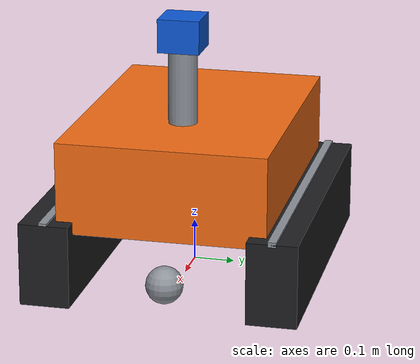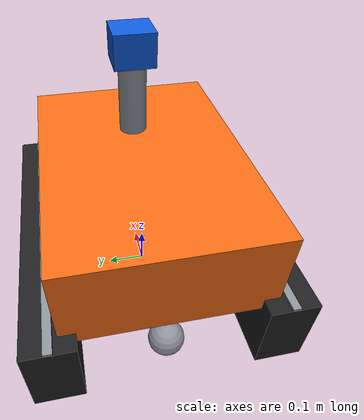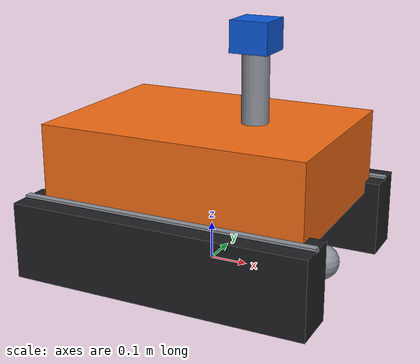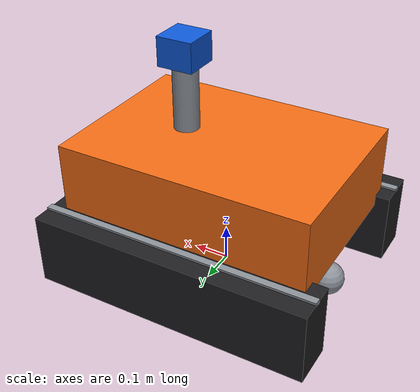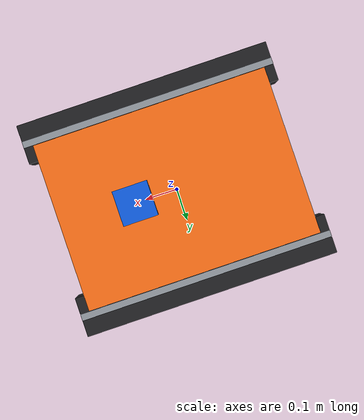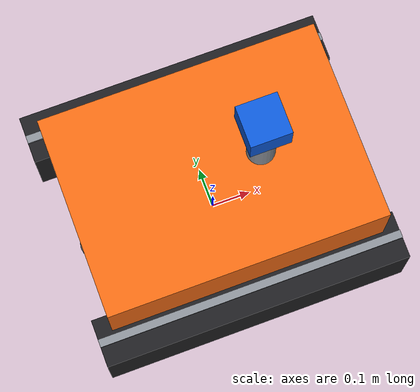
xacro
<?xml version="1.0"?>
<robot name="tracked_vehicle" xmlns:xacro="http://www.ros.org/wiki/xacro">

  <!-- ============================ 可调参数 ============================ -->
  <xacro:arg name="enable_camera" default="false"/>

  <xacro:property name="wheel_radius" value="0.08"/>
  <xacro:property name="wheel_width" value="0.06"/>
  <xacro:property name="wheel_separation" value="0.54"/>
  <xacro:property name="base_length" value="0.70"/>
  <xacro:property name="base_width" value="0.50"/>
  <xacro:property name="base_height" value="0.22"/>
  <xacro:property name="track_length" value="0.78"/>
  <xacro:property name="track_width" value="0.12"/>
  <xacro:property name="track_height" value="0.20"/>

  <!-- ============================ 材质 ============================ -->
  <material name="body_orange">
    <color rgba="0.95 0.42 0.08 1.0"/>
  </material>
  <material name="track_dark">
    <color rgba="0.12 0.12 0.13 1.0"/>
  </material>
  <material name="metal_grey">
    <color rgba="0.55 0.57 0.60 1.0"/>
  </material>
  <material name="sensor_blue">
    <color rgba="0.05 0.35 0.85 1.0"/>
  </material>

  <!-- ============================ 惯量宏 ============================ -->
  <xacro:macro name="box_inertia" params="m x y z ox oy oz">
    <inertial>
      <origin xyz="${ox} ${oy} ${oz}" rpy="0 0 0"/>
      <mass value="${m}"/>
      <inertia ixx="${m*(y*y+z*z)/12.0}" ixy="0.0" ixz="0.0"
               iyy="${m*(x*x+z*z)/12.0}" iyz="0.0"
               izz="${m*(x*x+y*y)/12.0}"/>
    </inertial>
  </xacro:macro>

  <xacro:macro name="cylinder_inertia" params="m r l ox oy oz">
    <inertial>
      <origin xyz="${ox} ${oy} ${oz}" rpy="0 0 0"/>
      <mass value="${m}"/>
      <inertia ixx="${m*(3*r*r+l*l)/12.0}" ixy="0.0" ixz="0.0"
               iyy="${m*(3*r*r+l*l)/12.0}" iyz="0.0"
               izz="${m*r*r/2.0}"/>
    </inertial>
  </xacro:macro>

  <!-- ============================ 车体 ============================ -->
  <link name="base_link">
    <xacro:box_inertia m="18.0" x="${base_length}" y="${base_width}" z="${base_height}"
                       ox="0" oy="0" oz="0.22"/>
    <visual>
      <origin xyz="0 0 0.28" rpy="0 0 0"/>
      <geometry>
        <box size="${base_length} ${base_width} ${base_height}"/>
      </geometry>
      <material name="body_orange"/>
    </visual>
    <collision>
      <origin xyz="0 0 0.28" rpy="0 0 0"/>
      <geometry>
        <box size="${base_length} ${base_width} ${base_height}"/>
      </geometry>
    </collision>
  </link>

  <!-- 车顶传感器桅杆（视觉件，不参与碰撞） -->
  <link name="sensor_mast">
    <visual>
      <origin xyz="0 0 0.10" rpy="0 0 0"/>
      <geometry>
        <cylinder radius="0.035" length="0.20"/>
      </geometry>
      <material name="metal_grey"/>
    </visual>
    <visual>
      <origin xyz="0 0 0.22" rpy="0 0 0"/>
      <geometry>
        <box size="0.10 0.10 0.08"/>
      </geometry>
      <material name="sensor_blue"/>
    </visual>
  </link>
  <joint name="sensor_mast_joint" type="fixed">
    <parent link="base_link"/>
    <child link="sensor_mast"/>
    <origin xyz="0.12 0 0.39" rpy="0 0 0"/>
  </joint>

  <!-- ============================ 履带（视觉件） ============================ -->
  <link name="left_track">
    <visual>
      <origin xyz="0 0 0.10" rpy="0 0 0"/>
      <geometry>
        <box size="${track_length} ${track_width} ${track_height}"/>
      </geometry>
      <material name="track_dark"/>
    </visual>
    <!-- 履带表面的浅色横向花纹，增强 Gazebo 画面辨识度 -->
    <visual>
      <origin xyz="0 0 0.20" rpy="0 0 0"/>
      <geometry>
        <box size="${track_length} 0.02 0.012"/>
      </geometry>
      <material name="metal_grey"/>
    </visual>
  </link>
  <joint name="left_track_joint" type="fixed">
    <parent link="base_link"/>
    <child link="left_track"/>
    <origin xyz="0 0.27 0" rpy="0 0 0"/>
  </joint>

  <link name="right_track">
    <visual>
      <origin xyz="0 0 0.10" rpy="0 0 0"/>
      <geometry>
        <box size="${track_length} ${track_width} ${track_height}"/>
      </geometry>
      <material name="track_dark"/>
    </visual>
    <visual>
      <origin xyz="0 0 0.20" rpy="0 0 0"/>
      <geometry>
        <box size="${track_length} 0.02 0.012"/>
      </geometry>
      <material name="metal_grey"/>
    </visual>
  </link>
  <joint name="right_track_joint" type="fixed">
    <parent link="base_link"/>
    <child link="right_track"/>
    <origin xyz="0 -0.27 0" rpy="0 0 0"/>
  </joint>

  <!-- ============================ 驱动轮 ============================ -->
  <link name="left_wheel">
    <xacro:cylinder_inertia m="1.2" r="${wheel_radius}" l="${wheel_width}"
                            ox="0" oy="0" oz="0"/>
    <visual>
      <origin xyz="0 0 0" rpy="1.57079632679 0 0"/>
      <geometry>
        <cylinder radius="${wheel_radius}" length="${wheel_width}"/>
      </geometry>
      <material name="metal_grey"/>
    </visual>
    <collision>
      <origin xyz="0 0 0" rpy="1.57079632679 0 0"/>
      <geometry>
        <cylinder radius="${wheel_radius}" length="${wheel_width}"/>
      </geometry>
    </collision>
  </link>
  <joint name="left_wheel_joint" type="continuous">
    <parent link="base_link"/>
    <child link="left_wheel"/>
    <origin xyz="0 0.27 ${wheel_radius}" rpy="0 0 0"/>
    <axis xyz="0 1 0"/>
    <limit effort="50.0" velocity="20.0"/>
  </joint>

  <link name="right_wheel">
    <xacro:cylinder_inertia m="1.2" r="${wheel_radius}" l="${wheel_width}"
                            ox="0" oy="0" oz="0"/>
    <visual>
      <origin xyz="0 0 0" rpy="1.57079632679 0 0"/>
      <geometry>
        <cylinder radius="${wheel_radius}" length="${wheel_width}"/>
      </geometry>
      <material name="metal_grey"/>
    </visual>
    <collision>
      <origin xyz="0 0 0" rpy="1.57079632679 0 0"/>
      <geometry>
        <cylinder radius="${wheel_radius}" length="${wheel_width}"/>
      </geometry>
    </collision>
  </link>
  <joint name="right_wheel_joint" type="continuous">
    <parent link="base_link"/>
    <child link="right_wheel"/>
    <origin xyz="0 -0.27 ${wheel_radius}" rpy="0 0 0"/>
    <axis xyz="0 1 0"/>
    <limit effort="50.0" velocity="20.0"/>
  </joint>

  <!-- ============================ 前后万向支撑轮 ============================ -->
  <link name="front_caster">
    <xacro:cylinder_inertia m="0.15" r="0.045" l="0.03" ox="0" oy="0" oz="0"/>
    <visual>
      <origin xyz="0 0 0" rpy="0 0 0"/>
      <geometry>
        <sphere radius="0.045"/>
      </geometry>
      <material name="metal_grey"/>
    </visual>
    <collision>
      <origin xyz="0 0 0" rpy="0 0 0"/>
      <geometry>
        <sphere radius="0.045"/>
      </geometry>
    </collision>
  </link>
  <joint name="front_caster_joint" type="fixed">
    <parent link="base_link"/>
    <child link="front_caster"/>
    <origin xyz="0.31 0 0.048" rpy="0 0 0"/>
  </joint>

  <link name="rear_caster">
    <xacro:cylinder_inertia m="0.15" r="0.045" l="0.03" ox="0" oy="0" oz="0"/>
    <visual>
      <origin xyz="0 0 0" rpy="0 0 0"/>
      <geometry>
        <sphere radius="0.045"/>
      </geometry>
      <material name="metal_grey"/>
    </visual>
    <collision>
      <origin xyz="0 0 0" rpy="0 0 0"/>
      <geometry>
        <sphere radius="0.045"/>
      </geometry>
    </collision>
  </link>
  <joint name="rear_caster_joint" type="fixed">
    <parent link="base_link"/>
    <child link="rear_caster"/>
    <origin xyz="-0.31 0 0.048" rpy="0 0 0"/>
  </joint>

  <!-- ============================ Gazebo 摩擦参数 ============================ -->
  <gazebo reference="left_wheel">
    <mu1>1.4</mu1>
    <mu2>1.4</mu2>
    <kp>1000000.0</kp>
    <kd>100.0</kd>
  </gazebo>
  <gazebo reference="right_wheel">
    <mu1>1.4</mu1>
    <mu2>1.4</mu2>
    <kp>1000000.0</kp>
    <kd>100.0</kd>
  </gazebo>
  <gazebo reference="front_caster">
    <mu1>0.01</mu1>
    <mu2>0.01</mu2>
  </gazebo>
  <gazebo reference="rear_caster">
    <mu1>0.01</mu1>
    <mu2>0.01</mu2>
  </gazebo>
  <gazebo reference="base_link">
    <mu1>0.6</mu1>
    <mu2>0.6</mu2>
    <selfCollide>false</selfCollide>
  </gazebo>

  <!-- ============================ 差速驱动插件 ============================ -->
  <gazebo>
    <plugin name="diff_drive" filename="libgazebo_ros_diff_drive.so">
      <updateRate>50.0</updateRate>
      <leftJoint>left_wheel_joint</leftJoint>
      <rightJoint>right_wheel_joint</rightJoint>
      <wheelSeparation>${wheel_separation}</wheelSeparation>
      <wheelDiameter>${wheel_radius * 2.0}</wheelDiameter>
      <wheelTorque>40.0</wheelTorque>
      <wheelAcceleration>0.0</wheelAcceleration>
      <commandTopic>cmd_vel</commandTopic>
      <odometryTopic>odom</odometryTopic>
      <odometryFrame>odom</odometryFrame>
      <robotBaseFrame>base_link</robotBaseFrame>
      <odometrySource>world</odometrySource>
      <publishWheelTF>false</publishWheelTF>
      <publishWheelJointState>true</publishWheelJointState>
      <rosDebugLevel>na</rosDebugLevel>
    </plugin>
  </gazebo>

  <!-- ============================ IMU 插件 ============================ -->
  <gazebo>
    <plugin name="imu_plugin" filename="libgazebo_ros_imu.so">
      <bodyName>base_link</bodyName>
      <topicName>imu</topicName>
      <serviceName>imu_service</serviceName>
      <gaussianNoise>0.0</gaussianNoise>
      <updateRate>100.0</updateRate>
    </plugin>
  </gazebo>

  <!-- ============================ 可选前置相机 ============================ -->
  <xacro:if value="$(arg enable_camera)">
    <link name="front_camera_link">
      <visual>
        <origin xyz="0 0 0" rpy="0 0 0"/>
        <geometry>
          <box size="0.06 0.10 0.05"/>
        </geometry>
        <material name="sensor_blue"/>
      </visual>
    </link>
    <joint name="front_camera_joint" type="fixed">
      <parent link="sensor_mast"/>
      <child link="front_camera_link"/>
      <origin xyz="0.06 0 0.22" rpy="0 0 0"/>
    </joint>
    <gazebo reference="front_camera_link">
      <sensor type="camera" name="front_camera">
        <update_rate>15.0</update_rate>
        <camera>
          <horizontal_fov>1.047</horizontal_fov>
          <image>
            <width>320</width>
            <height>240</height>
            <format>R8G8B8</format>
          </image>
          <clip>
            <near>0.05</near>
            <far>50.0</far>
          </clip>
        </camera>
        <plugin name="front_camera_controller" filename="libgazebo_ros_camera.so">
          <cameraName>front_camera</cameraName>
          <imageTopicName>image_raw</imageTopicName>
          <cameraInfoTopicName>camera_info</cameraInfoTopicName>
          <frameName>front_camera_link</frameName>
        </plugin>
      </sensor>
    </gazebo>
  </xacro:if>

</robot>
